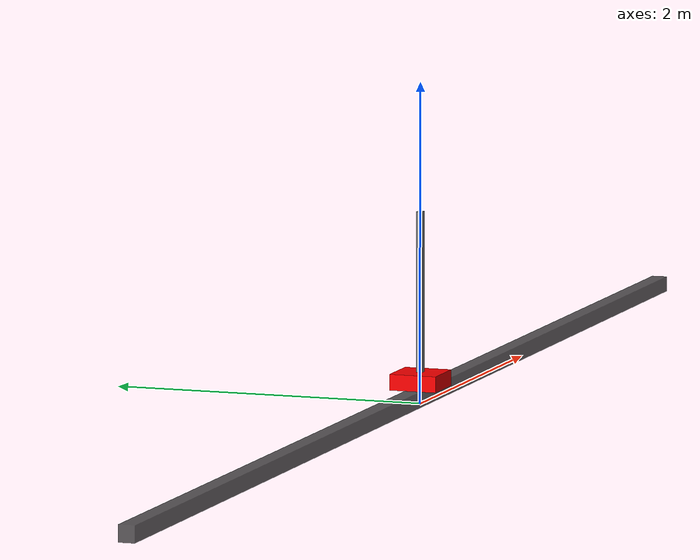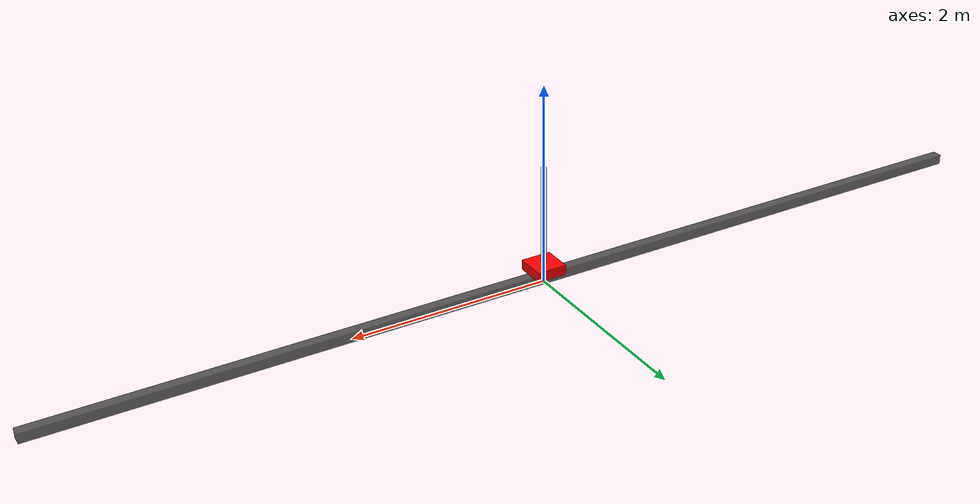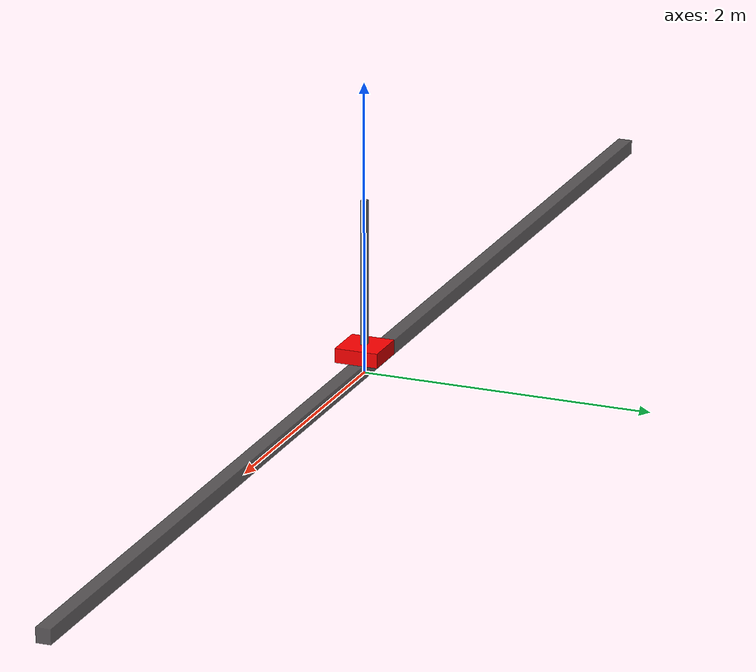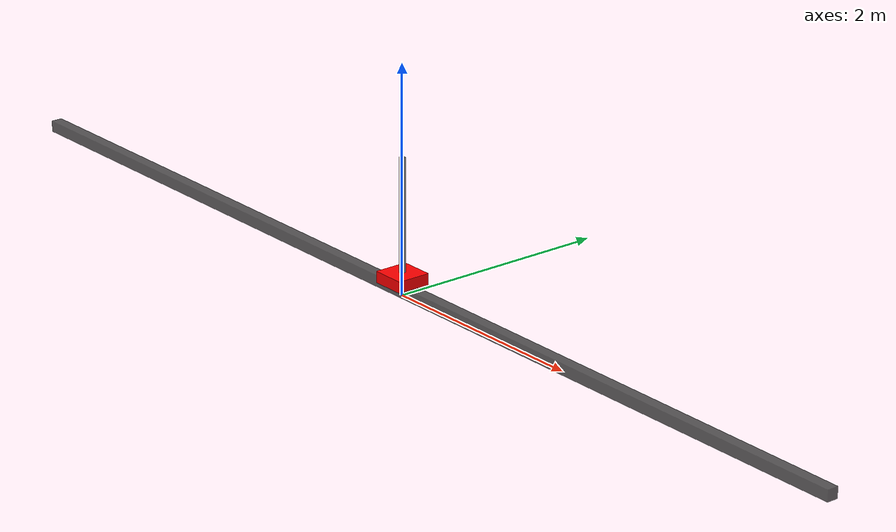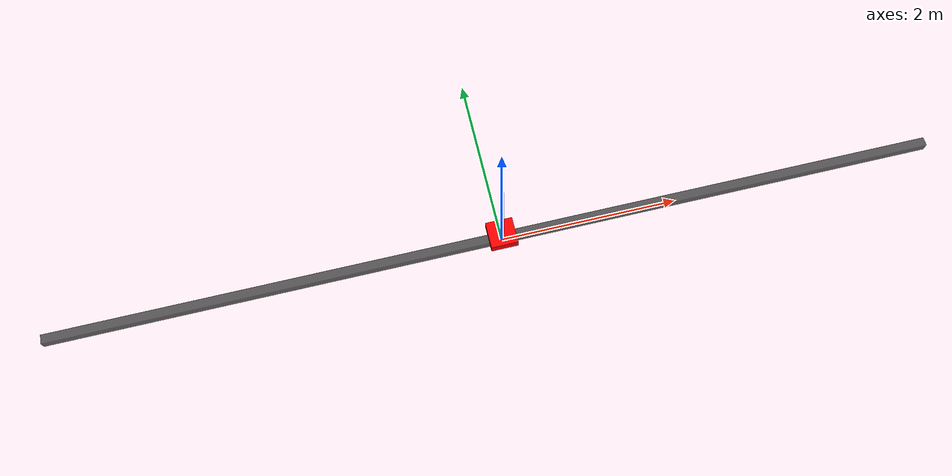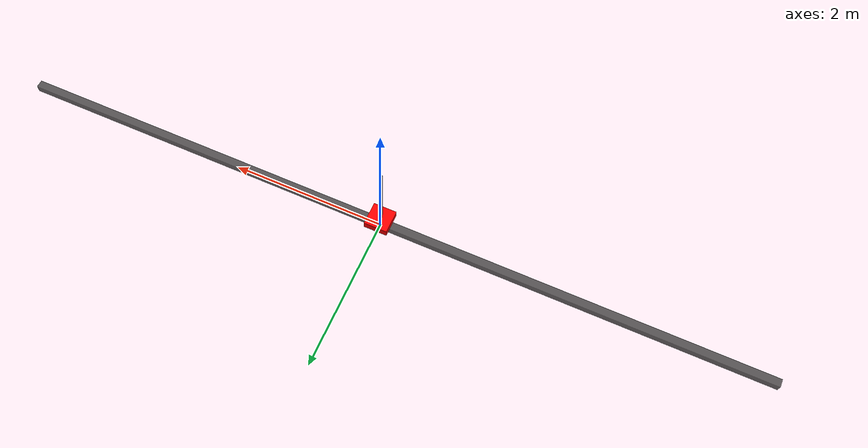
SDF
<?xml version="1.0"?>
<sdf version='1.6'>
  <model name='cartpole'>

    <link name="rail">
      <pose frame=''>0 0 0.05 0 0 0</pose>
      <inertial>
        <pose frame=''>0 0 0 0 0 0</pose>
        <mass>100</mass>
        <inertia>
          <ixx>10</ixx>
          <iyy>10</iyy>
          <izz>10</izz>
          <ixy>0</ixy>
          <iyz>0</iyz>
          <ixz>0</ixz>
        </inertia>
      </inertial>
      <collision name="rail_collision">
        <geometry>
          <box>
            <size>10 0.1 0.1</size>
          </box>
        </geometry>
      </collision>
      <visual name="rail_visual">
        <cast_shadows>false</cast_shadows>
        <transparency>0.2</transparency>
        <geometry>
          <box>
            <size>10 0.1 0.1</size>
          </box>
        </geometry>
        <material>
          <ambient>0.2 0.2 0.2 1</ambient>
          <diffuse>0.2 0.2 0.2 1</diffuse>
          <specular>0.2 0.2 0.2 1</specular>
        </material>
      </visual>
      <self_collide>0</self_collide>
      <enable_wind>0</enable_wind>
      <kinematic>0</kinematic>
    </link>
    <joint name='rail_joint' type='fixed'>
      <pose frame=''>0 0 0.05 0 0 0</pose>
      <parent>world</parent>
      <child>rail</child>
    </joint>

    <link name='cart'>
      <pose frame=''>0 0 0.15 0 0 0</pose>
      <inertial>
        <pose frame=''>0 0 0 0 0 0</pose>
        <mass>1</mass>
        <inertia>
          <ixx>4.2e-03</ixx>
          <ixy>0</ixy>
          <ixz>0</ixz>
          <iyy>4.2e-03</iyy>
          <iyz>0</iyz>
          <izz>7.5e-03</izz>
        </inertia>
      </inertial>
      <collision name='cart_collision'>
        <pose frame=''>0 0 0 0 0 0</pose>
        <geometry>
          <box>
            <size>0.3 0.3 0.1</size>
          </box>
        </geometry>
      </collision>
      <visual name='cart_visual'>
        <cast_shadows>false</cast_shadows>
        <transparency>0</transparency>
        <pose frame=''>0 0 0 0 -0 0</pose>
        <geometry>
          <box>
            <size>0.3 0.3 0.1</size>
          </box>
        </geometry>
        <material>
          <ambient>1 0 0 1</ambient>
          <diffuse>1 0 0 1</diffuse>
          <specular>1 0 0 1</specular>
        </material>
      </visual>
    </link>
    <joint name='cart_joint' type='prismatic'>
      <pose frame=''>0 0 0.1 0 0 0</pose>
      <parent>rail</parent>
      <child>cart</child>
      <axis>
        <xyz>1 0 0</xyz>
        <limit>
          <lower>-4</lower>
          <upper>4</upper>
        </limit>
      </axis>
      <use_parent_model_frame>1</use_parent_model_frame>
    </joint>

    <link name='pole'>
      <pose frame=''>0 0 0.7 0 0 0</pose>
      <inertial>
        <pose frame=''>0 0 0 0 0 0</pose>
        <mass>0.5</mass>
        <inertia>
          <ixx>4.2e-02</ixx>
          <ixy>0</ixy>
          <ixz>0</ixz>
          <iyy>4.2e-02</iyy>
          <iyz>0</iyz>
          <izz>8.3e-05</izz>
        </inertia>
      </inertial>
      <collision name='pole_collision'>
        <pose frame=''>0 0 0 0 0 0</pose>
        <geometry>
          <box>
            <size>0.04 0.04 1</size>
          </box>
        </geometry>
      </collision>
      <visual name='pole_visual'>
        <cast_shadows>false</cast_shadows>
        <transparency>0</transparency>
        <pose frame=''>0 0 0 0 0 0</pose>
        <geometry>
          <box>
            <size>0.04 0.04 1</size>
          </box>
        </geometry>
        <material>
          <ambient>0.5 0.5 0.5 1</ambient>
          <diffuse>0.5 0.5 0.5 1</diffuse>
          <specular>0.5 0.5 0.5 1</specular>
        </material>
      </visual>
    </link>
    <joint name='pole_joint' type='revolute'>
      <pose frame=''>0 0 -0.5 0 0 0</pose>
      <parent>cart</parent>
      <child>pole</child>
      <axis>
        <xyz>0 1 0</xyz>
        <limit>
          <lower>-1e+16</lower>
          <upper>1e+16</upper>
        </limit>
        <dynamics>
          <spring_reference>0</spring_reference>
          <spring_stiffness>0</spring_stiffness>
        </dynamics>
        <use_parent_model_frame>1</use_parent_model_frame>
      </axis>
    </joint>

  </model>
</sdf>
